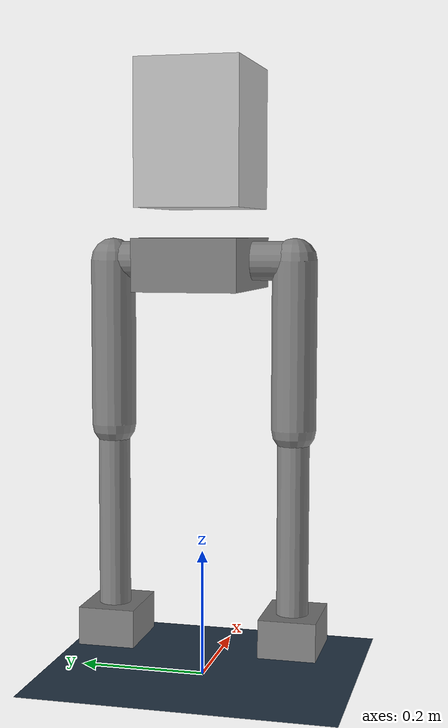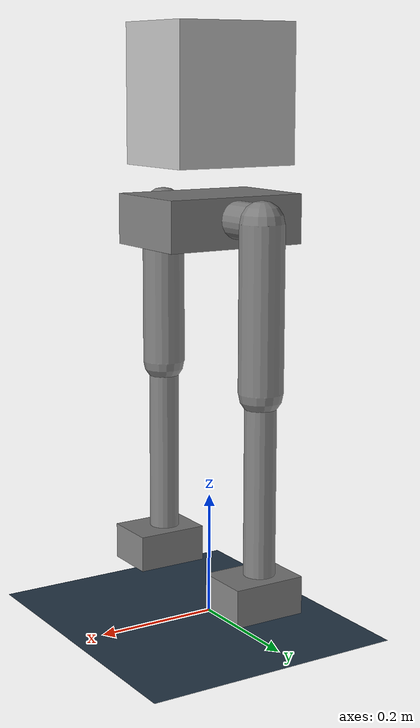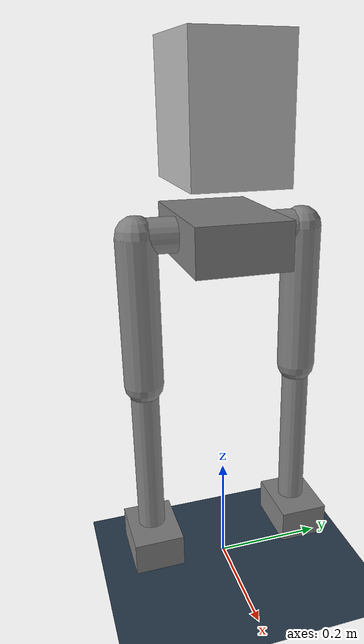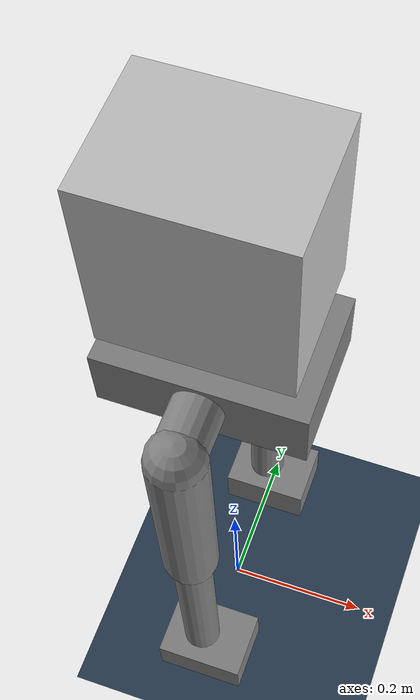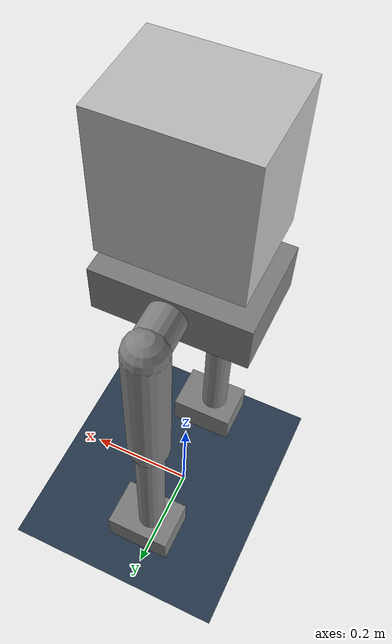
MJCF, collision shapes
<mujoco model="fairy">
  <compiler angle="radian" meshdir="meshes"/>

  <option iterations="3" ls_iterations="5" timestep="0.002" integrator="Euler">
    <flag eulerdamp="disable"/>
  </option>

  <default>
    <default class="fairy">
      <site size="0.001" rgba="0.5 0.5 0.5 0.3" group="4"/>
      <position inheritrange="1.0"/>
      <default class="motor1">
        <joint actuatorfrcrange="-36 36" frictionloss="0.3" damping="1.0" armature="0.005"/>
        <position kp="15"/>
      </default>
      <default class="motor2">
        <joint actuatorfrcrange="-36 36" frictionloss="0.3" damping="0.5" armature="0.005"/>
        <position kp="5"/>
      </default>
      <default class="motor3">
        <joint actuatorfrcrange="-60 60" frictionloss="0.3" damping="1.5" armature="0.005"/>
        <position kp="15"/>
      </default>
      <default class="motor4">
        <joint actuatorfrcrange="-60 60" frictionloss="0.3" damping="2.5" armature="0.005"/>
        <position kp="25"/>
      </default>
      <default class="motor5">
        <joint actuatorfrcrange="-36 36" frictionloss="0.3"  damping="0.1" armature="0.005"/>
        <position kp="5"/>
      </default>
      <default class="visual">
        <geom type="mesh" contype="0" conaffinity="0" group="1" density="0" rgba="0.75294 0.75294 0.75294 1"/>
      </default>
      <default class='visualgeom'>
        <geom material='visualgeom' condim='1' contype='0' conaffinity='0' />
      </default>
      <default class="collision">
        <geom group="3" mass="0" density="0"/>
        <default class="foot">
          <geom type="sphere" size=".001"/>
          <default class="foot1">
            <geom size="0.001" contype="0" conaffinity="0" density="0"/>
          </default>
          <default class="foot2">
            <geom size="0.001"/>
          </default>
        </default>
      </default>
    </default>
  </default>

  <asset>
    <texture type="skybox" builtin="gradient" rgb1="0.3 0.5 0.7" rgb2="0 0 0" width="512"
      height="512" />
    <texture name="texplane" type="2d" builtin="checker" rgb1=".2 .3 .4" rgb2=".1 0.15 0.2"
      width="512" height="512" mark="cross" markrgb=".8 .8 .8" />
    <texture name="texplane2" type="2d" builtin="checker" rgb1="1 0.3137 0.1843"
      rgb2="0.0 0.30196 0.38039"
      width="512" height="512" mark="cross" markrgb=".8 .8 .8" />
    <material name="matplane" reflectance="0." texture="texplane" texrepeat="1 1" texuniform="true" />
    <material name="matplane2" reflectance="0.1" texture="texplane2" texrepeat="1 1"
      texuniform="true" />

    <material name='obstacle' rgba='0.9 0.6 0.2 1' />
    <material name='visualgeom' rgba='0.5 0.9 0.2 1' />
    <material name='visualgeom2' rgba='0.5 0.9 0.2 1' />

    <mesh name="base" file="BASE.STL"/>
    <mesh name="lhip" file="LHIP.STL"/>
    <mesh name="luleg" file="LULEG.STL"/>
    <mesh name="llleg" file="LLLEG.STL"/>
    <mesh name="ltoe" file="LTOE.STL"/>
    <mesh name="rhip" file="RHIP.STL"/>
    <mesh name="ruleg" file="RULEG.STL"/>
    <mesh name="rlleg" file="RLLEG.STL"/>
    <mesh name="rtoe" file="RTOE.STL"/>
  </asset>

  <worldbody>
    <!-- Light source -->
    <light directional="true" diffuse=".4 .4 .4" specular="0.1 0.1 0.1" pos="0 0 5.0" dir="0 0 -1"
      castshadow="false" />
    <light directional="true" diffuse=".6 .6 .6" specular="0.2 0.2 0.2" pos="0 0 4" dir="0 0 -1" />
    <!-- Ground plane -->
    <geom name="ground" type="plane" size="10 10 0.01" pos="0 0 0" quat="1 0 0 0" material="matplane"
      condim="3" conaffinity="0" friction="0.6" contype="1"/>
    <!-- Base link (floating) -->
    <!-- Initial position matches keyframe "crouch" for consistency -->
    <body name="base_link" pos="0 0 0.85" quat="1 0 0 0" childclass="fairy">
      <joint type='slide' axis='1 0 0' limited='false' />
      <joint type='slide' axis='0 1 0' limited='false' />
      <joint type='slide' axis='0 0 1' limited='false' />
      <joint type='ball' limited='false' />
      <inertial pos="0 0 0" mass="3.0"
                  diaginertia="0.0185 0.023125 0.017425"/>
      <geom size="0.105 0.08 0.11" pos="0 0.0 0.0" quat="1 0 0 0"
        type="box" rgba="0.75294 0.75294 0.75294 1" />
      <camera name="track" pos="1.248 -0.947 0.3" xyaxes="0.628 0.779 -0.000 -0.274 0.221 0.936" mode="trackcom"/>
      <!-- IMU sensor -->
      <site name="imu" pos="0 0 0" size="0.01"/>
      <body name="lower_base_link" pos="0 0 -0.19" quat="1 0 0 0">
        <inertial pos="0 0 -0.00474" mass="9.72349"
                  diaginertia="0.07842643393798777 0.06327906149316344 0.10124929098058508"/>
        <!-- Visual mesh (no collision) -->
        <geom type="mesh" mesh="base" rgba="1 1 1 1" contype="0" conaffinity="0"/>
        <!-- Collision box -->
        <geom type="box" size="0.12 0.08 0.04" pos="0 0 -0.005" rgba="0.5 0.5 0.5 0.3"/>

        <!-- Right leg (Motor ID 1-4) -->
        <body name="R_FOOT" pos="0 -0.08 0">
          <body name="R1" pos="0 0 0">
            <joint name="leg_r1_joint" axis="1 0 0"
                  range="-2.094 2.094" limited="true" frictionloss="0.2"/>
            <inertial pos="0 0 0" mass="1.23047" diaginertia="0.0018303633358577802 0.0039401153269064335 0.0035094898580769786"/>
            <!-- Visual mesh (no collision) -->
            <geom type="mesh" mesh="rhip" rgba="1 1 1 1" contype="0" conaffinity="0"/>
            <!-- Collision capsule -->
            <geom type="capsule" fromto="0 0 0 0 -0.065 0" size="0.03" rgba="0.5 0.5 0.5 0.3"/>

            <body name="R2" pos="0 -0.065 0">
              <joint name="leg_r2_joint" axis="0 1 0"
                    range="-3.14 3.14" limited="true" frictionloss="0.2"/>
              <inertial pos="0.0 0 -0.11924" mass="2.06632"
                        diaginertia="0.028423839552622263 0.027088604867877116 0.006885361957140555"/>
              <!-- Visual mesh (no collision) -->
              <geom type="mesh" mesh="ruleg" rgba="1 1 1 1" contype="0" conaffinity="0"/>
              <!-- Collision capsule for upper leg -->
              <geom type="capsule" fromto="0 0 0 0 0 -0.26" size="0.035" rgba="0.5 0.5 0.5 0.3"/>

              <body name="R3" pos="0 0 -0.26">
                <joint name="leg_r3_joint" axis="0 1 0"
                      range="-2.094 3.142" limited="true" frictionloss="0.2"/>
                <inertial pos="0 0 -0.15" mass="0.41492"
                          diaginertia="0.004368293950062158 0.0043649330449301435 0.0007692542542232213"/>
                <!-- Visual mesh (no collision) -->
                <geom type="mesh" mesh="rlleg" rgba="1 1 1 1" contype="0" conaffinity="0"/>
                <!-- Collision capsule for lower leg -->
                <geom type="capsule" fromto="0 0 0 0 0 -0.30056" size="0.025" rgba="0.5 0.5 0.5 0.3"/>

                <body name="R4" pos="0 0 -0.30056">
                  <joint name="leg_r4_joint" axis="0 1 0"
                        range="-0.785 1.571" limited="true" frictionloss="0.2"/>
                  <inertial pos="0 0 -0.04246" mass="0.3"
                            diaginertia="0.00036615939455986174 0.0005477740783050022 0.0007028353336951787"/>
                  <!-- Visual mesh (no collision) -->
                  <geom type="mesh" mesh="rtoe" rgba="1 1 1 1" contype="0" conaffinity="0"/>
                  <!-- Collision box for toe (1.5x size for stability) -->
                  <geom type="box" size="0.06 0.045 0.03" pos="0.01 0 -0.02" rgba="0.5 0.5 0.5 0.3"/>
                  <geom name="right_foot1" class="foot1"/>
                  <geom name="right_foot2" class="foot2"/>
                  <geom name="right_foot" class="foot"/>
                  <site name ="right_foot" pos="0 0 0" />
                </body>
              </body>
            </body>
          </body>
        </body>

        <!-- Left leg (Motor ID 5-8) -->
        <body name="L_FOOT" pos="0 0.08 0">
          <body name="L1" pos="0 0 0">
            <joint name="leg_l1_joint" axis="1 0 0" range="-2.094 2.094" limited="true" frictionloss="0.2"/>
            <inertial pos="0 0 0" mass="1.23047" diaginertia="0.0018233989548339167 0.003940115487341474 0.003502525316618075"/>
            <!-- Visual mesh (no collision) -->
            <geom type="mesh" mesh="lhip" rgba="1 1 1 1" contype="0" conaffinity="0"/>
            <!-- Collision capsule -->
            <geom type="capsule" fromto="0 0 0 0 0.065 0" size="0.03" rgba="0.5 0.5 0.5 0.3"/>

            <body name="L2" pos="0 0.065 0">
              <joint name="leg_l2_joint" axis="0 1 0" range="-3.14 3.14"  limited="true" frictionloss="0.2"/>
              <inertial pos="0.00006 0 -0.11924" mass="2.06632"
                        diaginertia="0.028423839552622263 0.027088604867877116 0.006885361957140555"/>
              <!-- Visual mesh (no collision) -->
              <geom type="mesh" mesh="luleg" rgba="1 1 1 1" contype="0" conaffinity="0"/>
              <!-- Collision capsule for upper leg -->
              <geom type="capsule" fromto="0 0 0 0 0 -0.26" size="0.035" rgba="0.5 0.5 0.5 0.3"/>

              <body name="L3" pos="0 0 -0.26">
                <joint name="leg_l3_joint" axis="0 1 0"
                      range="-2.094 3.142"  limited="true" frictionloss="0.2"/>
                <inertial pos="0 0 -0.15" mass="0.41492"
                          diaginertia="0.004368293950062158 0.0043649330449301435 0.0007692542542232213"/>
                <!-- Visual mesh (no collision) -->
                <geom type="mesh" mesh="llleg" rgba="1 1 1 1" contype="0" conaffinity="0"/>
                <!-- Collision capsule for lower leg -->
                <geom type="capsule" fromto="0 0 0 0 0 -0.30056" size="0.025" rgba="0.5 0.5 0.5 0.3"/>

                <body name="L4" pos="0 0 -0.30056">
                  <joint name="leg_l4_joint" axis="0 1 0"
                        range="-0.785 1.571" limited="true" frictionloss="0.2"/>
                  <inertial pos="0 0 -0.04246" mass="0.3"
                            diaginertia="0.00036615939455986174 0.0005477740783050022 0.0007028353336951787"/>
                  <!-- Visual mesh (no collision) -->
                  <geom type="mesh" mesh="ltoe" rgba="1 1 1 1" contype="0" conaffinity="0"/>
                  <!-- Collision box for toe (1.5x size for stability) -->
                  <geom type="box" size="0.06 0.045 0.03" pos="0.01 0 -0.02" rgba="0.5 0.5 0.5 0.3"/>
                  <geom name="left_foot1" class="foot1"/>
                  <geom name="left_foot2" class="foot2"/>
                  <geom name="left_foot" class="foot"/>
                  <site name="left_foot" pos="0 0 0" />
                </body>
              </body>
            </body>
          </body>
        </body>
      </body>
    </body>
  </worldbody>

  <actuator>
    <position class="motor3" name="leg_l1_joint" joint="leg_l1_joint"/>
    <position class="motor3" name="leg_l2_joint" joint="leg_l2_joint"/>
    <position class="motor4" name="leg_l3_joint" joint="leg_l3_joint"/>
    <position class="motor5" name="leg_l4_joint" joint="leg_l4_joint"/>

    <position class="motor3" name="leg_r1_joint" joint="leg_r1_joint"/>
    <position class="motor3" name="leg_r2_joint" joint="leg_r2_joint"/>
    <position class="motor4" name="leg_r3_joint" joint="leg_r3_joint"/>
    <position class="motor5" name="leg_r4_joint" joint="leg_r4_joint"/>
  </actuator>

  <sensor>
    <actuatorpos name='leg_l1_joint_p' actuator='leg_l1_joint' user='13' />
    <actuatorpos name='leg_l2_joint_p' actuator='leg_l2_joint' user='13' />
    <actuatorpos name='leg_l3_joint_p' actuator='leg_l3_joint' user='13' />
    <actuatorpos name='leg_l4_joint_p' actuator='leg_l4_joint' user='13' />
    <actuatorpos name='leg_r1_joint_p' actuator='leg_r1_joint' user='13' />
    <actuatorpos name='leg_r2_joint_p' actuator='leg_r2_joint' user='13' />
    <actuatorpos name='leg_r3_joint_p' actuator='leg_r3_joint' user='13' />
    <actuatorpos name='leg_r4_joint_p' actuator='leg_r4_joint' user='13' />

    <actuatorvel name='leg_l1_joint_v' actuator='leg_l1_joint' user='13' />
    <actuatorvel name='leg_l2_joint_v' actuator='leg_l2_joint' user='13' />
    <actuatorvel name='leg_l3_joint_v' actuator='leg_l3_joint' user='13' />
    <actuatorvel name='leg_l4_joint_v' actuator='leg_l4_joint' user='13' />
    <actuatorvel name='leg_r1_joint_v' actuator='leg_r1_joint' user='13' />
    <actuatorvel name='leg_r2_joint_v' actuator='leg_r2_joint' user='13' />
    <actuatorvel name='leg_r3_joint_v' actuator='leg_r3_joint' user='13' />
    <actuatorvel name='leg_r4_joint_v' actuator='leg_r4_joint' user='13' />

    <actuatorfrc name='leg_l1_joint_f' actuator='leg_l1_joint' user='13' />
    <actuatorfrc name='leg_l2_joint_f' actuator='leg_l2_joint' user='13' />
    <actuatorfrc name='leg_l3_joint_f' actuator='leg_l3_joint' user='13' />
    <actuatorfrc name='leg_l4_joint_f' actuator='leg_l4_joint' user='13' />
    <actuatorfrc name='leg_r1_joint_f' actuator='leg_r1_joint' user='13' />
    <actuatorfrc name='leg_r2_joint_f' actuator='leg_r2_joint' user='13' />
    <actuatorfrc name='leg_r3_joint_f' actuator='leg_r3_joint' user='13' />
    <actuatorfrc name='leg_r4_joint_f' actuator='leg_r4_joint' user='13' />

    <!-- IMU sensor -->
    <gyro site="imu" name="gyro"/>
    <velocimeter site="imu" name="local_linvel"/>
    <accelerometer site="imu" name="accelerometer"/>
    <framepos objtype="site" objname="imu" name="position"/>
    <framezaxis objtype="site" objname="imu" name="upvector"/>
    <framexaxis objtype="site" objname="imu" name="forwardvector"/>
    <framelinvel objtype="site" objname="imu" name="global_linvel"/>
    <frameangvel objtype="site" objname="imu" name="global_angvel"/>
    <framequat objtype="site" objname="imu" name="orientation"/>
    <framelinvel objtype="site" objname="right_foot" name="right_foot_global_linvel"/>
    <framelinvel objtype="site" objname="left_foot" name="left_foot_global_linvel"/>
  </sensor>

  <keyframe>
    <!-- Initial crouch pose (pose_Z): [0, -145, 158.9, -43, 0, -145, 158.9, -43] degrees -->
    <!-- This is used for Backspace reset -->

    <!-- Default starting pose (same as crouch for consistency) -->
  </keyframe>
</mujoco>
